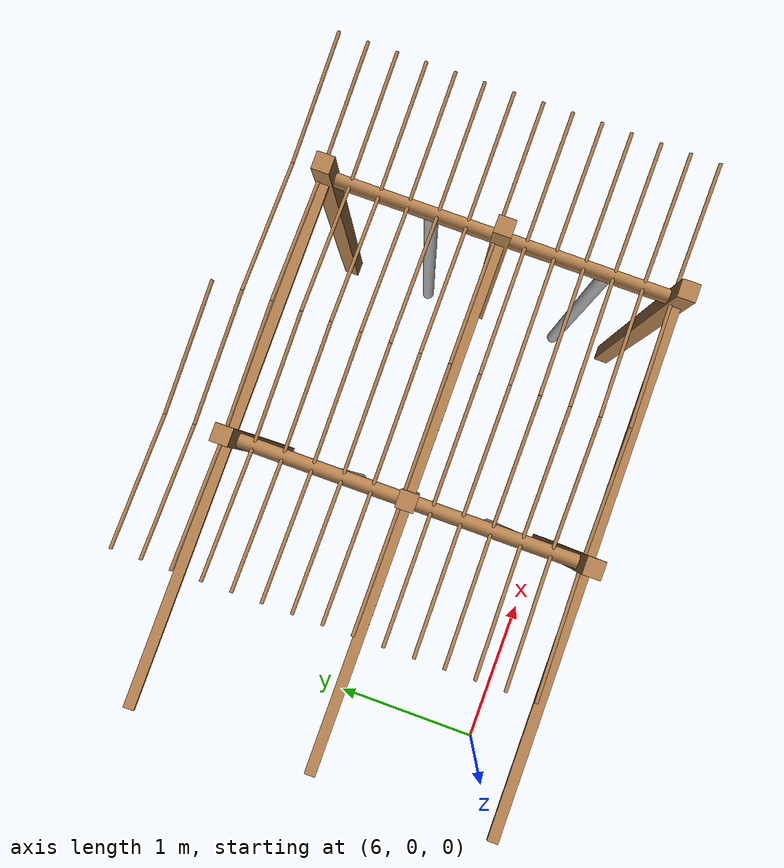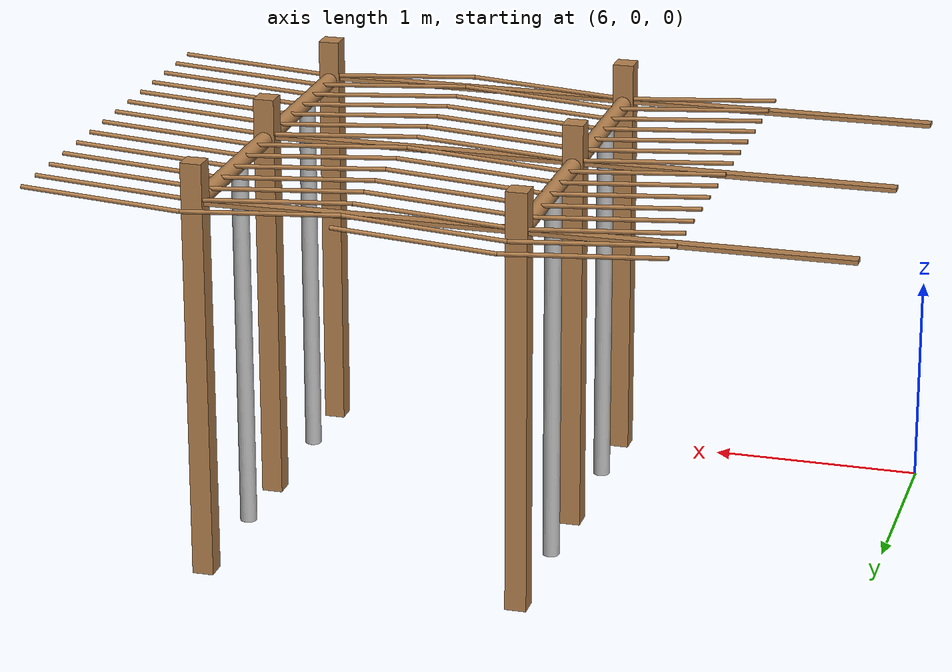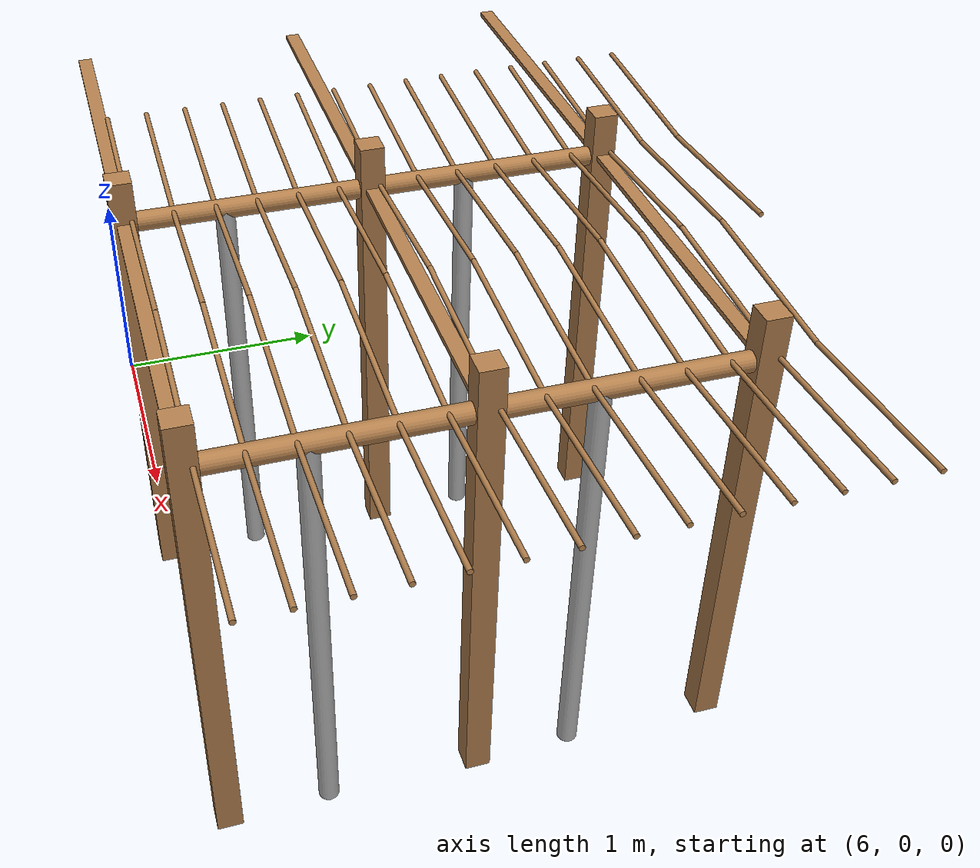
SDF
<sdf version="1.4">
 <model name="pergola">
  <include><name>post_55</name><pose>7.5 0.0 0 0 0 0</pose><uri>model://post</uri></include>
  <include><name>post_56</name><pose>7.5 1.0 0 0 0 0</pose><uri>model://post</uri></include>
  <include><name>post_57</name><pose>7.5 2.0 0 0 0 0</pose><uri>model://post</uri></include>
  <include><name>post_66</name><pose>9.0 0.0 0 0 0 0</pose><uri>model://post</uri></include>
  <include><name>post_67</name><pose>9.0 1.0 0 0 0 0</pose><uri>model://post</uri></include>
  <include><name>post_68</name><pose>9.0 2.0 0 0 0 0</pose><uri>model://post</uri></include>
  <link name="beam_44">
   <pose>6.75 0.0 1.81 0 0 0</pose>
   <collision name="collision"><geometry><box><size>1.5 0.06 0.02</size></box></geometry></collision>
   <visual name="visual">
    <geometry><box><size>1.5 0.06 0.02</size></box></geometry>
    <material><script><name>Gazebo/Wood</name></script></material>
   </visual>
   <inertial>
    <mass>5</mass>
    <inertia>
     <ixx>0.0016666666666666668</ixx>
     <ixy>0.0</ixy>
     <ixz>0.0</ixz>
     <iyy>0.9390000000000001</iyy>
     <iyz>0.0</iyz>
     <izz>0.9376666666666665</izz>
    </inertia>
   </inertial>
  </link>
  <link name="beam_45">
   <pose>6.75 1.0 1.81 0 0 0</pose>
   <collision name="collision"><geometry><box><size>1.5 0.06 0.02</size></box></geometry></collision>
   <visual name="visual">
    <geometry><box><size>1.5 0.06 0.02</size></box></geometry>
    <material><script><name>Gazebo/Wood</name></script></material>
   </visual>
   <inertial>
    <mass>5</mass>
    <inertia>
     <ixx>0.0016666666666666668</ixx>
     <ixy>0.0</ixy>
     <ixz>0.0</ixz>
     <iyy>0.9390000000000001</iyy>
     <iyz>0.0</iyz>
     <izz>0.9376666666666665</izz>
    </inertia>
   </inertial>
  </link>
  <link name="beam_46">
   <pose>6.75 2.0 1.81 0 0 0</pose>
   <collision name="collision"><geometry><box><size>1.5 0.06 0.02</size></box></geometry></collision>
   <visual name="visual">
    <geometry><box><size>1.5 0.06 0.02</size></box></geometry>
    <material><script><name>Gazebo/Wood</name></script></material>
   </visual>
   <inertial>
    <mass>5</mass>
    <inertia>
     <ixx>0.0016666666666666668</ixx>
     <ixy>0.0</ixy>
     <ixz>0.0</ixz>
     <iyy>0.9390000000000001</iyy>
     <iyz>0.0</iyz>
     <izz>0.9376666666666665</izz>
    </inertia>
   </inertial>
  </link>
  <link name="beam_55">
   <pose>8.25 0.0 1.81 0 0 0</pose>
   <collision name="collision"><geometry><box><size>1.5 0.06 0.02</size></box></geometry></collision>
   <visual name="visual">
    <geometry><box><size>1.5 0.06 0.02</size></box></geometry>
    <material><script><name>Gazebo/Wood</name></script></material>
   </visual>
   <inertial>
    <mass>5</mass>
    <inertia>
     <ixx>0.0016666666666666668</ixx>
     <ixy>0.0</ixy>
     <ixz>0.0</ixz>
     <iyy>0.9390000000000001</iyy>
     <iyz>0.0</iyz>
     <izz>0.9376666666666665</izz>
    </inertia>
   </inertial>
  </link>
  <link name="beam_56">
   <pose>8.25 1.0 1.81 0 0 0</pose>
   <collision name="collision"><geometry><box><size>1.5 0.06 0.02</size></box></geometry></collision>
   <visual name="visual">
    <geometry><box><size>1.5 0.06 0.02</size></box></geometry>
    <material><script><name>Gazebo/Wood</name></script></material>
   </visual>
   <inertial>
    <mass>5</mass>
    <inertia>
     <ixx>0.0016666666666666668</ixx>
     <ixy>0.0</ixy>
     <ixz>0.0</ixz>
     <iyy>0.9390000000000001</iyy>
     <iyz>0.0</iyz>
     <izz>0.9376666666666665</izz>
    </inertia>
   </inertial>
  </link>
  <link name="beam_57">
   <pose>8.25 2.0 1.81 0 0 0</pose>
   <collision name="collision"><geometry><box><size>1.5 0.06 0.02</size></box></geometry></collision>
   <visual name="visual">
    <geometry><box><size>1.5 0.06 0.02</size></box></geometry>
    <material><script><name>Gazebo/Wood</name></script></material>
   </visual>
   <inertial>
    <mass>5</mass>
    <inertia>
     <ixx>0.0016666666666666668</ixx>
     <ixy>0.0</ixy>
     <ixz>0.0</ixz>
     <iyy>0.9390000000000001</iyy>
     <iyz>0.0</iyz>
     <izz>0.9376666666666665</izz>
    </inertia>
   </inertial>
  </link>
  <include><name>tree_50</name><pose>7.5 0.4 0 0 0 0</pose><uri>model://tree_trunk</uri></include>
  <include><name>tree_51</name><pose>7.5 1.4 0 0 0 0</pose><uri>model://tree_trunk</uri></include>
  <include><name>tree_60</name><pose>9.0 0.4 0 0 0 0</pose><uri>model://tree_trunk</uri></include>
  <include><name>tree_61</name><pose>9.0 1.4 0 0 0 0</pose><uri>model://tree_trunk</uri></include>
  <link name="baseBranch_50">
   <pose>7.5 0.5 1.8 1.5707963267948966 0 0</pose>
   <collision name="collision">
    <geometry><cylinder><radius>0.04</radius><length>0.94</length></cylinder></geometry>
   </collision>
   <visual name="visual">
    <geometry><cylinder><radius>0.04</radius><length>0.94</length></cylinder></geometry>
    <material><script><name>Gazebo/WoodFloor</name></script></material>
   </visual>
   <inertial>
    <mass>10</mass>
    <inertia>
     <ixx>0.7403333333333334</ixx>
     <ixy>0.0</ixy>
     <ixz>0.0</ixz>
     <iyy>0.7403333333333334</iyy>
     <iyz>0.0</iyz>
     <izz>0.008</izz>
    </inertia>
   </inertial>
  </link>
  <link name="baseBranch_51">
   <pose>7.5 1.5 1.8 1.5707963267948966 0 0</pose>
   <collision name="collision">
    <geometry><cylinder><radius>0.04</radius><length>0.94</length></cylinder></geometry>
   </collision>
   <visual name="visual">
    <geometry><cylinder><radius>0.04</radius><length>0.94</length></cylinder></geometry>
    <material><script><name>Gazebo/WoodFloor</name></script></material>
   </visual>
   <inertial>
    <mass>10</mass>
    <inertia>
     <ixx>0.7403333333333334</ixx>
     <ixy>0.0</ixy>
     <ixz>0.0</ixz>
     <iyy>0.7403333333333334</iyy>
     <iyz>0.0</iyz>
     <izz>0.008</izz>
    </inertia>
   </inertial>
  </link>
  <link name="baseBranch_60">
   <pose>9.0 0.5 1.8 1.5707963267948966 0 0</pose>
   <collision name="collision">
    <geometry><cylinder><radius>0.04</radius><length>0.94</length></cylinder></geometry>
   </collision>
   <visual name="visual">
    <geometry><cylinder><radius>0.04</radius><length>0.94</length></cylinder></geometry>
    <material><script><name>Gazebo/WoodFloor</name></script></material>
   </visual>
   <inertial>
    <mass>10</mass>
    <inertia>
     <ixx>0.7403333333333334</ixx>
     <ixy>0.0</ixy>
     <ixz>0.0</ixz>
     <iyy>0.7403333333333334</iyy>
     <iyz>0.0</iyz>
     <izz>0.008</izz>
    </inertia>
   </inertial>
  </link>
  <link name="baseBranch_61">
   <pose>9.0 1.5 1.8 1.5707963267948966 0 0</pose>
   <collision name="collision">
    <geometry><cylinder><radius>0.04</radius><length>0.94</length></cylinder></geometry>
   </collision>
   <visual name="visual">
    <geometry><cylinder><radius>0.04</radius><length>0.94</length></cylinder></geometry>
    <material><script><name>Gazebo/WoodFloor</name></script></material>
   </visual>
   <inertial>
    <mass>10</mass>
    <inertia>
     <ixx>0.7403333333333334</ixx>
     <ixy>0.0</ixy>
     <ixz>0.0</ixz>
     <iyy>0.7403333333333334</iyy>
     <iyz>0.0</iyz>
     <izz>0.008</izz>
    </inertia>
   </inertial>
  </link>
  <link name="vine_481">
   <pose>7.125 0.03 1.85 0 -1.5042281630190728 0</pose>
   <collision name="collision">
    <geometry><cylinder><radius>0.01</radius><length>0.7516648189186453</length></cylinder></geometry>
   </collision>
   <visual name="visual">
    <geometry><cylinder><radius>0.01</radius><length>0.7516648189186453</length></cylinder></geometry>
    <material><script><name>Gazebo/WoodFloor</name></script></material>
   </visual>
   <inertial>
    <mass>5</mass>
    <inertia>
     <ixx>0.23554166666666657</ixx>
     <ixy>0.0</ixy>
     <ixz>0.0</ixz>
     <iyy>0.23554166666666657</iyy>
     <iyz>0.0</iyz>
     <izz>0.00025</izz>
    </inertia>
   </inertial>
  </link>
  <link name="vine_483">
   <pose>7.125 0.19666666666666666 1.85 0 -1.5042281630190728 0</pose>
   <collision name="collision">
    <geometry><cylinder><radius>0.01</radius><length>0.7516648189186453</length></cylinder></geometry>
   </collision>
   <visual name="visual">
    <geometry><cylinder><radius>0.01</radius><length>0.7516648189186453</length></cylinder></geometry>
    <material><script><name>Gazebo/WoodFloor</name></script></material>
   </visual>
   <inertial>
    <mass>5</mass>
    <inertia>
     <ixx>0.23554166666666657</ixx>
     <ixy>0.0</ixy>
     <ixz>0.0</ixz>
     <iyy>0.23554166666666657</iyy>
     <iyz>0.0</iyz>
     <izz>0.00025</izz>
    </inertia>
   </inertial>
  </link>
  <link name="vine_485">
   <pose>7.125 0.3633333333333333 1.85 0 -1.5042281630190728 0</pose>
   <collision name="collision">
    <geometry><cylinder><radius>0.01</radius><length>0.7516648189186453</length></cylinder></geometry>
   </collision>
   <visual name="visual">
    <geometry><cylinder><radius>0.01</radius><length>0.7516648189186453</length></cylinder></geometry>
    <material><script><name>Gazebo/WoodFloor</name></script></material>
   </visual>
   <inertial>
    <mass>5</mass>
    <inertia>
     <ixx>0.23554166666666657</ixx>
     <ixy>0.0</ixy>
     <ixz>0.0</ixz>
     <iyy>0.23554166666666657</iyy>
     <iyz>0.0</iyz>
     <izz>0.00025</izz>
    </inertia>
   </inertial>
  </link>
  <link name="vine_487">
   <pose>7.125 0.53 1.85 0 -1.5042281630190728 0</pose>
   <collision name="collision">
    <geometry><cylinder><radius>0.01</radius><length>0.7516648189186453</length></cylinder></geometry>
   </collision>
   <visual name="visual">
    <geometry><cylinder><radius>0.01</radius><length>0.7516648189186453</length></cylinder></geometry>
    <material><script><name>Gazebo/WoodFloor</name></script></material>
   </visual>
   <inertial>
    <mass>5</mass>
    <inertia>
     <ixx>0.23554166666666657</ixx>
     <ixy>0.0</ixy>
     <ixz>0.0</ixz>
     <iyy>0.23554166666666657</iyy>
     <iyz>0.0</iyz>
     <izz>0.00025</izz>
    </inertia>
   </inertial>
  </link>
  <link name="vine_489">
   <pose>7.125 0.6966666666666667 1.85 0 -1.5042281630190728 0</pose>
   <collision name="collision">
    <geometry><cylinder><radius>0.01</radius><length>0.7516648189186453</length></cylinder></geometry>
   </collision>
   <visual name="visual">
    <geometry><cylinder><radius>0.01</radius><length>0.7516648189186453</length></cylinder></geometry>
    <material><script><name>Gazebo/WoodFloor</name></script></material>
   </visual>
   <inertial>
    <mass>5</mass>
    <inertia>
     <ixx>0.23554166666666657</ixx>
     <ixy>0.0</ixy>
     <ixz>0.0</ixz>
     <iyy>0.23554166666666657</iyy>
     <iyz>0.0</iyz>
     <izz>0.00025</izz>
    </inertia>
   </inertial>
  </link>
  <link name="vine_491">
   <pose>7.125 0.8633333333333333 1.85 0 -1.5042281630190728 0</pose>
   <collision name="collision">
    <geometry><cylinder><radius>0.01</radius><length>0.7516648189186453</length></cylinder></geometry>
   </collision>
   <visual name="visual">
    <geometry><cylinder><radius>0.01</radius><length>0.7516648189186453</length></cylinder></geometry>
    <material><script><name>Gazebo/WoodFloor</name></script></material>
   </visual>
   <inertial>
    <mass>5</mass>
    <inertia>
     <ixx>0.23554166666666657</ixx>
     <ixy>0.0</ixy>
     <ixz>0.0</ixz>
     <iyy>0.23554166666666657</iyy>
     <iyz>0.0</iyz>
     <izz>0.00025</izz>
    </inertia>
   </inertial>
  </link>
  <link name="vine_493">
   <pose>7.125 1.03 1.85 0 -1.5042281630190728 0</pose>
   <collision name="collision">
    <geometry><cylinder><radius>0.01</radius><length>0.7516648189186453</length></cylinder></geometry>
   </collision>
   <visual name="visual">
    <geometry><cylinder><radius>0.01</radius><length>0.7516648189186453</length></cylinder></geometry>
    <material><script><name>Gazebo/WoodFloor</name></script></material>
   </visual>
   <inertial>
    <mass>5</mass>
    <inertia>
     <ixx>0.23554166666666657</ixx>
     <ixy>0.0</ixy>
     <ixz>0.0</ixz>
     <iyy>0.23554166666666657</iyy>
     <iyz>0.0</iyz>
     <izz>0.00025</izz>
    </inertia>
   </inertial>
  </link>
  <link name="vine_495">
   <pose>7.125 1.1966666666666665 1.85 0 -1.5042281630190728 0</pose>
   <collision name="collision">
    <geometry><cylinder><radius>0.01</radius><length>0.7516648189186453</length></cylinder></geometry>
   </collision>
   <visual name="visual">
    <geometry><cylinder><radius>0.01</radius><length>0.7516648189186453</length></cylinder></geometry>
    <material><script><name>Gazebo/WoodFloor</name></script></material>
   </visual>
   <inertial>
    <mass>5</mass>
    <inertia>
     <ixx>0.23554166666666657</ixx>
     <ixy>0.0</ixy>
     <ixz>0.0</ixz>
     <iyy>0.23554166666666657</iyy>
     <iyz>0.0</iyz>
     <izz>0.00025</izz>
    </inertia>
   </inertial>
  </link>
  <link name="vine_497">
   <pose>7.125 1.3633333333333333 1.85 0 -1.5042281630190728 0</pose>
   <collision name="collision">
    <geometry><cylinder><radius>0.01</radius><length>0.7516648189186453</length></cylinder></geometry>
   </collision>
   <visual name="visual">
    <geometry><cylinder><radius>0.01</radius><length>0.7516648189186453</length></cylinder></geometry>
    <material><script><name>Gazebo/WoodFloor</name></script></material>
   </visual>
   <inertial>
    <mass>5</mass>
    <inertia>
     <ixx>0.23554166666666657</ixx>
     <ixy>0.0</ixy>
     <ixz>0.0</ixz>
     <iyy>0.23554166666666657</iyy>
     <iyz>0.0</iyz>
     <izz>0.00025</izz>
    </inertia>
   </inertial>
  </link>
  <link name="vine_499">
   <pose>7.125 1.53 1.85 0 -1.5042281630190728 0</pose>
   <collision name="collision">
    <geometry><cylinder><radius>0.01</radius><length>0.7516648189186453</length></cylinder></geometry>
   </collision>
   <visual name="visual">
    <geometry><cylinder><radius>0.01</radius><length>0.7516648189186453</length></cylinder></geometry>
    <material><script><name>Gazebo/WoodFloor</name></script></material>
   </visual>
   <inertial>
    <mass>5</mass>
    <inertia>
     <ixx>0.23554166666666657</ixx>
     <ixy>0.0</ixy>
     <ixz>0.0</ixz>
     <iyy>0.23554166666666657</iyy>
     <iyz>0.0</iyz>
     <izz>0.00025</izz>
    </inertia>
   </inertial>
  </link>
  <link name="vine_501">
   <pose>7.125 1.6966666666666665 1.85 0 -1.5042281630190728 0</pose>
   <collision name="collision">
    <geometry><cylinder><radius>0.01</radius><length>0.7516648189186453</length></cylinder></geometry>
   </collision>
   <visual name="visual">
    <geometry><cylinder><radius>0.01</radius><length>0.7516648189186453</length></cylinder></geometry>
    <material><script><name>Gazebo/WoodFloor</name></script></material>
   </visual>
   <inertial>
    <mass>5</mass>
    <inertia>
     <ixx>0.23554166666666657</ixx>
     <ixy>0.0</ixy>
     <ixz>0.0</ixz>
     <iyy>0.23554166666666657</iyy>
     <iyz>0.0</iyz>
     <izz>0.00025</izz>
    </inertia>
   </inertial>
  </link>
  <link name="vine_503">
   <pose>7.125 1.8633333333333333 1.85 0 -1.5042281630190728 0</pose>
   <collision name="collision">
    <geometry><cylinder><radius>0.01</radius><length>0.7516648189186453</length></cylinder></geometry>
   </collision>
   <visual name="visual">
    <geometry><cylinder><radius>0.01</radius><length>0.7516648189186453</length></cylinder></geometry>
    <material><script><name>Gazebo/WoodFloor</name></script></material>
   </visual>
   <inertial>
    <mass>5</mass>
    <inertia>
     <ixx>0.23554166666666657</ixx>
     <ixy>0.0</ixy>
     <ixz>0.0</ixz>
     <iyy>0.23554166666666657</iyy>
     <iyz>0.0</iyz>
     <izz>0.00025</izz>
    </inertia>
   </inertial>
  </link>
  <link name="vine_505">
   <pose>7.125 2.03 1.85 0 -1.5042281630190728 0</pose>
   <collision name="collision">
    <geometry><cylinder><radius>0.01</radius><length>0.7516648189186453</length></cylinder></geometry>
   </collision>
   <visual name="visual">
    <geometry><cylinder><radius>0.01</radius><length>0.7516648189186453</length></cylinder></geometry>
    <material><script><name>Gazebo/WoodFloor</name></script></material>
   </visual>
   <inertial>
    <mass>5</mass>
    <inertia>
     <ixx>0.23554166666666657</ixx>
     <ixy>0.0</ixy>
     <ixz>0.0</ixz>
     <iyy>0.23554166666666657</iyy>
     <iyz>0.0</iyz>
     <izz>0.00025</izz>
    </inertia>
   </inertial>
  </link>
  <link name="vine_507">
   <pose>7.125 2.1966666666666663 1.85 0 -1.5042281630190728 0</pose>
   <collision name="collision">
    <geometry><cylinder><radius>0.01</radius><length>0.7516648189186453</length></cylinder></geometry>
   </collision>
   <visual name="visual">
    <geometry><cylinder><radius>0.01</radius><length>0.7516648189186453</length></cylinder></geometry>
    <material><script><name>Gazebo/WoodFloor</name></script></material>
   </visual>
   <inertial>
    <mass>5</mass>
    <inertia>
     <ixx>0.23554166666666657</ixx>
     <ixy>0.0</ixy>
     <ixz>0.0</ixz>
     <iyy>0.23554166666666657</iyy>
     <iyz>0.0</iyz>
     <izz>0.00025</izz>
    </inertia>
   </inertial>
  </link>
  <link name="vine_509">
   <pose>7.125 2.363333333333333 1.85 0 -1.5042281630190728 0</pose>
   <collision name="collision">
    <geometry><cylinder><radius>0.01</radius><length>0.7516648189186453</length></cylinder></geometry>
   </collision>
   <visual name="visual">
    <geometry><cylinder><radius>0.01</radius><length>0.7516648189186453</length></cylinder></geometry>
    <material><script><name>Gazebo/WoodFloor</name></script></material>
   </visual>
   <inertial>
    <mass>5</mass>
    <inertia>
     <ixx>0.23554166666666657</ixx>
     <ixy>0.0</ixy>
     <ixz>0.0</ixz>
     <iyy>0.23554166666666657</iyy>
     <iyz>0.0</iyz>
     <izz>0.00025</izz>
    </inertia>
   </inertial>
  </link>
  <link name="vine_600">
   <pose>7.875 0.03 1.85 0 1.5042281630190728 0</pose>
   <collision name="collision">
    <geometry><cylinder><radius>0.01</radius><length>0.7516648189186453</length></cylinder></geometry>
   </collision>
   <visual name="visual">
    <geometry><cylinder><radius>0.01</radius><length>0.7516648189186453</length></cylinder></geometry>
    <material><script><name>Gazebo/WoodFloor</name></script></material>
   </visual>
   <inertial>
    <mass>5</mass>
    <inertia>
     <ixx>0.23554166666666657</ixx>
     <ixy>0.0</ixy>
     <ixz>0.0</ixz>
     <iyy>0.23554166666666657</iyy>
     <iyz>0.0</iyz>
     <izz>0.00025</izz>
    </inertia>
   </inertial>
  </link>
  <link name="vine_601">
   <pose>8.625 0.03 1.85 0 -1.5042281630190728 0</pose>
   <collision name="collision">
    <geometry><cylinder><radius>0.01</radius><length>0.7516648189186453</length></cylinder></geometry>
   </collision>
   <visual name="visual">
    <geometry><cylinder><radius>0.01</radius><length>0.7516648189186453</length></cylinder></geometry>
    <material><script><name>Gazebo/WoodFloor</name></script></material>
   </visual>
   <inertial>
    <mass>5</mass>
    <inertia>
     <ixx>0.23554166666666657</ixx>
     <ixy>0.0</ixy>
     <ixz>0.0</ixz>
     <iyy>0.23554166666666657</iyy>
     <iyz>0.0</iyz>
     <izz>0.00025</izz>
    </inertia>
   </inertial>
  </link>
  <link name="vine_602">
   <pose>7.875 0.19666666666666666 1.85 0 1.5042281630190728 0</pose>
   <collision name="collision">
    <geometry><cylinder><radius>0.01</radius><length>0.7516648189186453</length></cylinder></geometry>
   </collision>
   <visual name="visual">
    <geometry><cylinder><radius>0.01</radius><length>0.7516648189186453</length></cylinder></geometry>
    <material><script><name>Gazebo/WoodFloor</name></script></material>
   </visual>
   <inertial>
    <mass>5</mass>
    <inertia>
     <ixx>0.23554166666666657</ixx>
     <ixy>0.0</ixy>
     <ixz>0.0</ixz>
     <iyy>0.23554166666666657</iyy>
     <iyz>0.0</iyz>
     <izz>0.00025</izz>
    </inertia>
   </inertial>
  </link>
  <link name="vine_603">
   <pose>8.625 0.19666666666666666 1.85 0 -1.5042281630190728 0</pose>
   <collision name="collision">
    <geometry><cylinder><radius>0.01</radius><length>0.7516648189186453</length></cylinder></geometry>
   </collision>
   <visual name="visual">
    <geometry><cylinder><radius>0.01</radius><length>0.7516648189186453</length></cylinder></geometry>
    <material><script><name>Gazebo/WoodFloor</name></script></material>
   </visual>
   <inertial>
    <mass>5</mass>
    <inertia>
     <ixx>0.23554166666666657</ixx>
     <ixy>0.0</ixy>
     <ixz>0.0</ixz>
     <iyy>0.23554166666666657</iyy>
     <iyz>0.0</iyz>
     <izz>0.00025</izz>
    </inertia>
   </inertial>
  </link>
  <link name="vine_604">
   <pose>7.875 0.3633333333333333 1.85 0 1.5042281630190728 0</pose>
   <collision name="collision">
    <geometry><cylinder><radius>0.01</radius><length>0.7516648189186453</length></cylinder></geometry>
   </collision>
   <visual name="visual">
    <geometry><cylinder><radius>0.01</radius><length>0.7516648189186453</length></cylinder></geometry>
    <material><script><name>Gazebo/WoodFloor</name></script></material>
   </visual>
   <inertial>
    <mass>5</mass>
    <inertia>
     <ixx>0.23554166666666657</ixx>
     <ixy>0.0</ixy>
     <ixz>0.0</ixz>
     <iyy>0.23554166666666657</iyy>
     <iyz>0.0</iyz>
     <izz>0.00025</izz>
    </inertia>
   </inertial>
  </link>
  <link name="vine_605">
   <pose>8.625 0.3633333333333333 1.85 0 -1.5042281630190728 0</pose>
   <collision name="collision">
    <geometry><cylinder><radius>0.01</radius><length>0.7516648189186453</length></cylinder></geometry>
   </collision>
   <visual name="visual">
    <geometry><cylinder><radius>0.01</radius><length>0.7516648189186453</length></cylinder></geometry>
    <material><script><name>Gazebo/WoodFloor</name></script></material>
   </visual>
   <inertial>
    <mass>5</mass>
    <inertia>
     <ixx>0.23554166666666657</ixx>
     <ixy>0.0</ixy>
     <ixz>0.0</ixz>
     <iyy>0.23554166666666657</iyy>
     <iyz>0.0</iyz>
     <izz>0.00025</izz>
    </inertia>
   </inertial>
  </link>
  <link name="vine_606">
   <pose>7.875 0.53 1.85 0 1.5042281630190728 0</pose>
   <collision name="collision">
    <geometry><cylinder><radius>0.01</radius><length>0.7516648189186453</length></cylinder></geometry>
   </collision>
   <visual name="visual">
    <geometry><cylinder><radius>0.01</radius><length>0.7516648189186453</length></cylinder></geometry>
    <material><script><name>Gazebo/WoodFloor</name></script></material>
   </visual>
   <inertial>
    <mass>5</mass>
    <inertia>
     <ixx>0.23554166666666657</ixx>
     <ixy>0.0</ixy>
     <ixz>0.0</ixz>
     <iyy>0.23554166666666657</iyy>
     <iyz>0.0</iyz>
     <izz>0.00025</izz>
    </inertia>
   </inertial>
  </link>
  <link name="vine_607">
   <pose>8.625 0.53 1.85 0 -1.5042281630190728 0</pose>
   <collision name="collision">
    <geometry><cylinder><radius>0.01</radius><length>0.7516648189186453</length></cylinder></geometry>
   </collision>
   <visual name="visual">
    <geometry><cylinder><radius>0.01</radius><length>0.7516648189186453</length></cylinder></geometry>
    <material><script><name>Gazebo/WoodFloor</name></script></material>
   </visual>
   <inertial>
    <mass>5</mass>
    <inertia>
     <ixx>0.23554166666666657</ixx>
     <ixy>0.0</ixy>
     <ixz>0.0</ixz>
     <iyy>0.23554166666666657</iyy>
     <iyz>0.0</iyz>
     <izz>0.00025</izz>
    </inertia>
   </inertial>
  </link>
  <link name="vine_608">
   <pose>7.875 0.6966666666666667 1.85 0 1.5042281630190728 0</pose>
   <collision name="collision">
    <geometry><cylinder><radius>0.01</radius><length>0.7516648189186453</length></cylinder></geometry>
   </collision>
   <visual name="visual">
    <geometry><cylinder><radius>0.01</radius><length>0.7516648189186453</length></cylinder></geometry>
    <material><script><name>Gazebo/WoodFloor</name></script></material>
   </visual>
   <inertial>
    <mass>5</mass>
    <inertia>
     <ixx>0.23554166666666657</ixx>
     <ixy>0.0</ixy>
     <ixz>0.0</ixz>
     <iyy>0.23554166666666657</iyy>
     <iyz>0.0</iyz>
     <izz>0.00025</izz>
    </inertia>
   </inertial>
  </link>
  <link name="vine_609">
   <pose>8.625 0.6966666666666667 1.85 0 -1.5042281630190728 0</pose>
   <collision name="collision">
    <geometry><cylinder><radius>0.01</radius><length>0.7516648189186453</length></cylinder></geometry>
   </collision>
   <visual name="visual">
    <geometry><cylinder><radius>0.01</radius><length>0.7516648189186453</length></cylinder></geometry>
    <material><script><name>Gazebo/WoodFloor</name></script></material>
   </visual>
   <inertial>
    <mass>5</mass>
    <inertia>
     <ixx>0.23554166666666657</ixx>
     <ixy>0.0</ixy>
     <ixz>0.0</ixz>
     <iyy>0.23554166666666657</iyy>
     <iyz>0.0</iyz>
     <izz>0.00025</izz>
    </inertia>
   </inertial>
  </link>
  <link name="vine_610">
   <pose>7.875 0.8633333333333333 1.85 0 1.5042281630190728 0</pose>
   <collision name="collision">
    <geometry><cylinder><radius>0.01</radius><length>0.7516648189186453</length></cylinder></geometry>
   </collision>
   <visual name="visual">
    <geometry><cylinder><radius>0.01</radius><length>0.7516648189186453</length></cylinder></geometry>
    <material><script><name>Gazebo/WoodFloor</name></script></material>
   </visual>
   <inertial>
    <mass>5</mass>
    <inertia>
     <ixx>0.23554166666666657</ixx>
     <ixy>0.0</ixy>
     <ixz>0.0</ixz>
     <iyy>0.23554166666666657</iyy>
     <iyz>0.0</iyz>
     <izz>0.00025</izz>
    </inertia>
   </inertial>
  </link>
  <link name="vine_611">
   <pose>8.625 0.8633333333333333 1.85 0 -1.5042281630190728 0</pose>
   <collision name="collision">
    <geometry><cylinder><radius>0.01</radius><length>0.7516648189186453</length></cylinder></geometry>
   </collision>
   <visual name="visual">
    <geometry><cylinder><radius>0.01</radius><length>0.7516648189186453</length></cylinder></geometry>
    <material><script><name>Gazebo/WoodFloor</name></script></material>
   </visual>
   <inertial>
    <mass>5</mass>
    <inertia>
     <ixx>0.23554166666666657</ixx>
     <ixy>0.0</ixy>
     <ixz>0.0</ixz>
     <iyy>0.23554166666666657</iyy>
     <iyz>0.0</iyz>
     <izz>0.00025</izz>
    </inertia>
   </inertial>
  </link>
  <link name="vine_612">
   <pose>7.875 1.03 1.85 0 1.5042281630190728 0</pose>
   <collision name="collision">
    <geometry><cylinder><radius>0.01</radius><length>0.7516648189186453</length></cylinder></geometry>
   </collision>
   <visual name="visual">
    <geometry><cylinder><radius>0.01</radius><length>0.7516648189186453</length></cylinder></geometry>
    <material><script><name>Gazebo/WoodFloor</name></script></material>
   </visual>
   <inertial>
    <mass>5</mass>
    <inertia>
     <ixx>0.23554166666666657</ixx>
     <ixy>0.0</ixy>
     <ixz>0.0</ixz>
     <iyy>0.23554166666666657</iyy>
     <iyz>0.0</iyz>
     <izz>0.00025</izz>
    </inertia>
   </inertial>
  </link>
  <link name="vine_613">
   <pose>8.625 1.03 1.85 0 -1.5042281630190728 0</pose>
   <collision name="collision">
    <geometry><cylinder><radius>0.01</radius><length>0.7516648189186453</length></cylinder></geometry>
   </collision>
   <visual name="visual">
    <geometry><cylinder><radius>0.01</radius><length>0.7516648189186453</length></cylinder></geometry>
    <material><script><name>Gazebo/WoodFloor</name></script></material>
   </visual>
   <inertial>
    <mass>5</mass>
    <inertia>
     <ixx>0.23554166666666657</ixx>
     <ixy>0.0</ixy>
     <ixz>0.0</ixz>
     <iyy>0.23554166666666657</iyy>
     <iyz>0.0</iyz>
     <izz>0.00025</izz>
    </inertia>
   </inertial>
  </link>
  <link name="vine_614">
   <pose>7.875 1.1966666666666665 1.85 0 1.5042281630190728 0</pose>
   <collision name="collision">
    <geometry><cylinder><radius>0.01</radius><length>0.7516648189186453</length></cylinder></geometry>
   </collision>
   <visual name="visual">
    <geometry><cylinder><radius>0.01</radius><length>0.7516648189186453</length></cylinder></geometry>
    <material><script><name>Gazebo/WoodFloor</name></script></material>
   </visual>
   <inertial>
    <mass>5</mass>
    <inertia>
     <ixx>0.23554166666666657</ixx>
     <ixy>0.0</ixy>
     <ixz>0.0</ixz>
     <iyy>0.23554166666666657</iyy>
     <iyz>0.0</iyz>
     <izz>0.00025</izz>
    </inertia>
   </inertial>
  </link>
  <link name="vine_615">
   <pose>8.625 1.1966666666666665 1.85 0 -1.5042281630190728 0</pose>
   <collision name="collision">
    <geometry><cylinder><radius>0.01</radius><length>0.7516648189186453</length></cylinder></geometry>
   </collision>
   <visual name="visual">
    <geometry><cylinder><radius>0.01</radius><length>0.7516648189186453</length></cylinder></geometry>
    <material><script><name>Gazebo/WoodFloor</name></script></material>
   </visual>
   <inertial>
    <mass>5</mass>
    <inertia>
     <ixx>0.23554166666666657</ixx>
     <ixy>0.0</ixy>
     <ixz>0.0</ixz>
     <iyy>0.23554166666666657</iyy>
     <iyz>0.0</iyz>
     <izz>0.00025</izz>
    </inertia>
   </inertial>
  </link>
  <link name="vine_616">
   <pose>7.875 1.3633333333333333 1.85 0 1.5042281630190728 0</pose>
   <collision name="collision">
    <geometry><cylinder><radius>0.01</radius><length>0.7516648189186453</length></cylinder></geometry>
   </collision>
   <visual name="visual">
    <geometry><cylinder><radius>0.01</radius><length>0.7516648189186453</length></cylinder></geometry>
    <material><script><name>Gazebo/WoodFloor</name></script></material>
   </visual>
   <inertial>
    <mass>5</mass>
    <inertia>
     <ixx>0.23554166666666657</ixx>
     <ixy>0.0</ixy>
     <ixz>0.0</ixz>
     <iyy>0.23554166666666657</iyy>
     <iyz>0.0</iyz>
     <izz>0.00025</izz>
    </inertia>
   </inertial>
  </link>
  <link name="vine_617">
   <pose>8.625 1.3633333333333333 1.85 0 -1.5042281630190728 0</pose>
   <collision name="collision">
    <geometry><cylinder><radius>0.01</radius><length>0.7516648189186453</length></cylinder></geometry>
   </collision>
   <visual name="visual">
    <geometry><cylinder><radius>0.01</radius><length>0.7516648189186453</length></cylinder></geometry>
    <material><script><name>Gazebo/WoodFloor</name></script></material>
   </visual>
   <inertial>
    <mass>5</mass>
    <inertia>
     <ixx>0.23554166666666657</ixx>
     <ixy>0.0</ixy>
     <ixz>0.0</ixz>
     <iyy>0.23554166666666657</iyy>
     <iyz>0.0</iyz>
     <izz>0.00025</izz>
    </inertia>
   </inertial>
  </link>
  <link name="vine_618">
   <pose>7.875 1.53 1.85 0 1.5042281630190728 0</pose>
   <collision name="collision">
    <geometry><cylinder><radius>0.01</radius><length>0.7516648189186453</length></cylinder></geometry>
   </collision>
   <visual name="visual">
    <geometry><cylinder><radius>0.01</radius><length>0.7516648189186453</length></cylinder></geometry>
    <material><script><name>Gazebo/WoodFloor</name></script></material>
   </visual>
   <inertial>
    <mass>5</mass>
    <inertia>
     <ixx>0.23554166666666657</ixx>
     <ixy>0.0</ixy>
     <ixz>0.0</ixz>
     <iyy>0.23554166666666657</iyy>
     <iyz>0.0</iyz>
     <izz>0.00025</izz>
    </inertia>
   </inertial>
  </link>
  <link name="vine_619">
   <pose>8.625 1.53 1.85 0 -1.5042281630190728 0</pose>
   <collision name="collision">
    <geometry><cylinder><radius>0.01</radius><length>0.7516648189186453</length></cylinder></geometry>
   </collision>
   <visual name="visual">
    <geometry><cylinder><radius>0.01</radius><length>0.7516648189186453</length></cylinder></geometry>
    <material><script><name>Gazebo/WoodFloor</name></script></material>
   </visual>
   <inertial>
    <mass>5</mass>
    <inertia>
     <ixx>0.23554166666666657</ixx>
     <ixy>0.0</ixy>
     <ixz>0.0</ixz>
     <iyy>0.23554166666666657</iyy>
     <iyz>0.0</iyz>
     <izz>0.00025</izz>
    </inertia>
   </inertial>
  </link>
  <link name="vine_620">
   <pose>7.875 1.6966666666666665 1.85 0 1.5042281630190728 0</pose>
   <collision name="collision">
    <geometry><cylinder><radius>0.01</radius><length>0.7516648189186453</length></cylinder></geometry>
   </collision>
   <visual name="visual">
    <geometry><cylinder><radius>0.01</radius><length>0.7516648189186453</length></cylinder></geometry>
    <material><script><name>Gazebo/WoodFloor</name></script></material>
   </visual>
   <inertial>
    <mass>5</mass>
    <inertia>
     <ixx>0.23554166666666657</ixx>
     <ixy>0.0</ixy>
     <ixz>0.0</ixz>
     <iyy>0.23554166666666657</iyy>
     <iyz>0.0</iyz>
     <izz>0.00025</izz>
    </inertia>
   </inertial>
  </link>
  <link name="vine_621">
   <pose>8.625 1.6966666666666665 1.85 0 -1.5042281630190728 0</pose>
   <collision name="collision">
    <geometry><cylinder><radius>0.01</radius><length>0.7516648189186453</length></cylinder></geometry>
   </collision>
   <visual name="visual">
    <geometry><cylinder><radius>0.01</radius><length>0.7516648189186453</length></cylinder></geometry>
    <material><script><name>Gazebo/WoodFloor</name></script></material>
   </visual>
   <inertial>
    <mass>5</mass>
    <inertia>
     <ixx>0.23554166666666657</ixx>
     <ixy>0.0</ixy>
     <ixz>0.0</ixz>
     <iyy>0.23554166666666657</iyy>
     <iyz>0.0</iyz>
     <izz>0.00025</izz>
    </inertia>
   </inertial>
  </link>
  <link name="vine_622">
   <pose>7.875 1.8633333333333333 1.85 0 1.5042281630190728 0</pose>
   <collision name="collision">
    <geometry><cylinder><radius>0.01</radius><length>0.7516648189186453</length></cylinder></geometry>
   </collision>
   <visual name="visual">
    <geometry><cylinder><radius>0.01</radius><length>0.7516648189186453</length></cylinder></geometry>
    <material><script><name>Gazebo/WoodFloor</name></script></material>
   </visual>
   <inertial>
    <mass>5</mass>
    <inertia>
     <ixx>0.23554166666666657</ixx>
     <ixy>0.0</ixy>
     <ixz>0.0</ixz>
     <iyy>0.23554166666666657</iyy>
     <iyz>0.0</iyz>
     <izz>0.00025</izz>
    </inertia>
   </inertial>
  </link>
  <link name="vine_623">
   <pose>8.625 1.8633333333333333 1.85 0 -1.5042281630190728 0</pose>
   <collision name="collision">
    <geometry><cylinder><radius>0.01</radius><length>0.7516648189186453</length></cylinder></geometry>
   </collision>
   <visual name="visual">
    <geometry><cylinder><radius>0.01</radius><length>0.7516648189186453</length></cylinder></geometry>
    <material><script><name>Gazebo/WoodFloor</name></script></material>
   </visual>
   <inertial>
    <mass>5</mass>
    <inertia>
     <ixx>0.23554166666666657</ixx>
     <ixy>0.0</ixy>
     <ixz>0.0</ixz>
     <iyy>0.23554166666666657</iyy>
     <iyz>0.0</iyz>
     <izz>0.00025</izz>
    </inertia>
   </inertial>
  </link>
  <link name="vine_624">
   <pose>7.875 2.03 1.85 0 1.5042281630190728 0</pose>
   <collision name="collision">
    <geometry><cylinder><radius>0.01</radius><length>0.7516648189186453</length></cylinder></geometry>
   </collision>
   <visual name="visual">
    <geometry><cylinder><radius>0.01</radius><length>0.7516648189186453</length></cylinder></geometry>
    <material><script><name>Gazebo/WoodFloor</name></script></material>
   </visual>
   <inertial>
    <mass>5</mass>
    <inertia>
     <ixx>0.23554166666666657</ixx>
     <ixy>0.0</ixy>
     <ixz>0.0</ixz>
     <iyy>0.23554166666666657</iyy>
     <iyz>0.0</iyz>
     <izz>0.00025</izz>
    </inertia>
   </inertial>
  </link>
  <link name="vine_625">
   <pose>8.625 2.03 1.85 0 -1.5042281630190728 0</pose>
   <collision name="collision">
    <geometry><cylinder><radius>0.01</radius><length>0.7516648189186453</length></cylinder></geometry>
   </collision>
   <visual name="visual">
    <geometry><cylinder><radius>0.01</radius><length>0.7516648189186453</length></cylinder></geometry>
    <material><script><name>Gazebo/WoodFloor</name></script></material>
   </visual>
   <inertial>
    <mass>5</mass>
    <inertia>
     <ixx>0.23554166666666657</ixx>
     <ixy>0.0</ixy>
     <ixz>0.0</ixz>
     <iyy>0.23554166666666657</iyy>
     <iyz>0.0</iyz>
     <izz>0.00025</izz>
    </inertia>
   </inertial>
  </link>
  <link name="vine_626">
   <pose>7.875 2.1966666666666663 1.85 0 1.5042281630190728 0</pose>
   <collision name="collision">
    <geometry><cylinder><radius>0.01</radius><length>0.7516648189186453</length></cylinder></geometry>
   </collision>
   <visual name="visual">
    <geometry><cylinder><radius>0.01</radius><length>0.7516648189186453</length></cylinder></geometry>
    <material><script><name>Gazebo/WoodFloor</name></script></material>
   </visual>
   <inertial>
    <mass>5</mass>
    <inertia>
     <ixx>0.23554166666666657</ixx>
     <ixy>0.0</ixy>
     <ixz>0.0</ixz>
     <iyy>0.23554166666666657</iyy>
     <iyz>0.0</iyz>
     <izz>0.00025</izz>
    </inertia>
   </inertial>
  </link>
  <link name="vine_627">
   <pose>8.625 2.1966666666666663 1.85 0 -1.5042281630190728 0</pose>
   <collision name="collision">
    <geometry><cylinder><radius>0.01</radius><length>0.7516648189186453</length></cylinder></geometry>
   </collision>
   <visual name="visual">
    <geometry><cylinder><radius>0.01</radius><length>0.7516648189186453</length></cylinder></geometry>
    <material><script><name>Gazebo/WoodFloor</name></script></material>
   </visual>
   <inertial>
    <mass>5</mass>
    <inertia>
     <ixx>0.23554166666666657</ixx>
     <ixy>0.0</ixy>
     <ixz>0.0</ixz>
     <iyy>0.23554166666666657</iyy>
     <iyz>0.0</iyz>
     <izz>0.00025</izz>
    </inertia>
   </inertial>
  </link>
  <link name="vine_628">
   <pose>7.875 2.363333333333333 1.85 0 1.5042281630190728 0</pose>
   <collision name="collision">
    <geometry><cylinder><radius>0.01</radius><length>0.7516648189186453</length></cylinder></geometry>
   </collision>
   <visual name="visual">
    <geometry><cylinder><radius>0.01</radius><length>0.7516648189186453</length></cylinder></geometry>
    <material><script><name>Gazebo/WoodFloor</name></script></material>
   </visual>
   <inertial>
    <mass>5</mass>
    <inertia>
     <ixx>0.23554166666666657</ixx>
     <ixy>0.0</ixy>
     <ixz>0.0</ixz>
     <iyy>0.23554166666666657</iyy>
     <iyz>0.0</iyz>
     <izz>0.00025</izz>
    </inertia>
   </inertial>
  </link>
  <link name="vine_720">
   <pose>9.375 0.03 1.85 0 1.5042281630190728 0</pose>
   <collision name="collision">
    <geometry><cylinder><radius>0.01</radius><length>0.7516648189186453</length></cylinder></geometry>
   </collision>
   <visual name="visual">
    <geometry><cylinder><radius>0.01</radius><length>0.7516648189186453</length></cylinder></geometry>
    <material><script><name>Gazebo/WoodFloor</name></script></material>
   </visual>
   <inertial>
    <mass>5</mass>
    <inertia>
     <ixx>0.23554166666666657</ixx>
     <ixy>0.0</ixy>
     <ixz>0.0</ixz>
     <iyy>0.23554166666666657</iyy>
     <iyz>0.0</iyz>
     <izz>0.00025</izz>
    </inertia>
   </inertial>
  </link>
  <link name="vine_722">
   <pose>9.375 0.19666666666666666 1.85 0 1.5042281630190728 0</pose>
   <collision name="collision">
    <geometry><cylinder><radius>0.01</radius><length>0.7516648189186453</length></cylinder></geometry>
   </collision>
   <visual name="visual">
    <geometry><cylinder><radius>0.01</radius><length>0.7516648189186453</length></cylinder></geometry>
    <material><script><name>Gazebo/WoodFloor</name></script></material>
   </visual>
   <inertial>
    <mass>5</mass>
    <inertia>
     <ixx>0.23554166666666657</ixx>
     <ixy>0.0</ixy>
     <ixz>0.0</ixz>
     <iyy>0.23554166666666657</iyy>
     <iyz>0.0</iyz>
     <izz>0.00025</izz>
    </inertia>
   </inertial>
  </link>
  <link name="vine_724">
   <pose>9.375 0.3633333333333333 1.85 0 1.5042281630190728 0</pose>
   <collision name="collision">
    <geometry><cylinder><radius>0.01</radius><length>0.7516648189186453</length></cylinder></geometry>
   </collision>
   <visual name="visual">
    <geometry><cylinder><radius>0.01</radius><length>0.7516648189186453</length></cylinder></geometry>
    <material><script><name>Gazebo/WoodFloor</name></script></material>
   </visual>
   <inertial>
    <mass>5</mass>
    <inertia>
     <ixx>0.23554166666666657</ixx>
     <ixy>0.0</ixy>
     <ixz>0.0</ixz>
     <iyy>0.23554166666666657</iyy>
     <iyz>0.0</iyz>
     <izz>0.00025</izz>
    </inertia>
   </inertial>
  </link>
  <link name="vine_726">
   <pose>9.375 0.53 1.85 0 1.5042281630190728 0</pose>
   <collision name="collision">
    <geometry><cylinder><radius>0.01</radius><length>0.7516648189186453</length></cylinder></geometry>
   </collision>
   <visual name="visual">
    <geometry><cylinder><radius>0.01</radius><length>0.7516648189186453</length></cylinder></geometry>
    <material><script><name>Gazebo/WoodFloor</name></script></material>
   </visual>
   <inertial>
    <mass>5</mass>
    <inertia>
     <ixx>0.23554166666666657</ixx>
     <ixy>0.0</ixy>
     <ixz>0.0</ixz>
     <iyy>0.23554166666666657</iyy>
     <iyz>0.0</iyz>
     <izz>0.00025</izz>
    </inertia>
   </inertial>
  </link>
  <link name="vine_728">
   <pose>9.375 0.6966666666666667 1.85 0 1.5042281630190728 0</pose>
   <collision name="collision">
    <geometry><cylinder><radius>0.01</radius><length>0.7516648189186453</length></cylinder></geometry>
   </collision>
   <visual name="visual">
    <geometry><cylinder><radius>0.01</radius><length>0.7516648189186453</length></cylinder></geometry>
    <material><script><name>Gazebo/WoodFloor</name></script></material>
   </visual>
   <inertial>
    <mass>5</mass>
    <inertia>
     <ixx>0.23554166666666657</ixx>
     <ixy>0.0</ixy>
     <ixz>0.0</ixz>
     <iyy>0.23554166666666657</iyy>
     <iyz>0.0</iyz>
     <izz>0.00025</izz>
    </inertia>
   </inertial>
  </link>
  <link name="vine_730">
   <pose>9.375 0.8633333333333333 1.85 0 1.5042281630190728 0</pose>
   <collision name="collision">
    <geometry><cylinder><radius>0.01</radius><length>0.7516648189186453</length></cylinder></geometry>
   </collision>
   <visual name="visual">
    <geometry><cylinder><radius>0.01</radius><length>0.7516648189186453</length></cylinder></geometry>
    <material><script><name>Gazebo/WoodFloor</name></script></material>
   </visual>
   <inertial>
    <mass>5</mass>
    <inertia>
     <ixx>0.23554166666666657</ixx>
     <ixy>0.0</ixy>
     <ixz>0.0</ixz>
     <iyy>0.23554166666666657</iyy>
     <iyz>0.0</iyz>
     <izz>0.00025</izz>
    </inertia>
   </inertial>
  </link>
  <link name="vine_732">
   <pose>9.375 1.03 1.85 0 1.5042281630190728 0</pose>
   <collision name="collision">
    <geometry><cylinder><radius>0.01</radius><length>0.7516648189186453</length></cylinder></geometry>
   </collision>
   <visual name="visual">
    <geometry><cylinder><radius>0.01</radius><length>0.7516648189186453</length></cylinder></geometry>
    <material><script><name>Gazebo/WoodFloor</name></script></material>
   </visual>
   <inertial>
    <mass>5</mass>
    <inertia>
     <ixx>0.23554166666666657</ixx>
     <ixy>0.0</ixy>
     <ixz>0.0</ixz>
     <iyy>0.23554166666666657</iyy>
     <iyz>0.0</iyz>
     <izz>0.00025</izz>
    </inertia>
   </inertial>
  </link>
  <link name="vine_734">
   <pose>9.375 1.1966666666666665 1.85 0 1.5042281630190728 0</pose>
   <collision name="collision">
    <geometry><cylinder><radius>0.01</radius><length>0.7516648189186453</length></cylinder></geometry>
   </collision>
   <visual name="visual">
    <geometry><cylinder><radius>0.01</radius><length>0.7516648189186453</length></cylinder></geometry>
    <material><script><name>Gazebo/WoodFloor</name></script></material>
   </visual>
   <inertial>
    <mass>5</mass>
    <inertia>
     <ixx>0.23554166666666657</ixx>
     <ixy>0.0</ixy>
     <ixz>0.0</ixz>
     <iyy>0.23554166666666657</iyy>
     <iyz>0.0</iyz>
     <izz>0.00025</izz>
    </inertia>
   </inertial>
  </link>
  <link name="vine_736">
   <pose>9.375 1.3633333333333333 1.85 0 1.5042281630190728 0</pose>
   <collision name="collision">
    <geometry><cylinder><radius>0.01</radius><length>0.7516648189186453</length></cylinder></geometry>
   </collision>
   <visual name="visual">
    <geometry><cylinder><radius>0.01</radius><length>0.7516648189186453</length></cylinder></geometry>
    <material><script><name>Gazebo/WoodFloor</name></script></material>
   </visual>
   <inertial>
    <mass>5</mass>
    <inertia>
     <ixx>0.23554166666666657</ixx>
     <ixy>0.0</ixy>
     <ixz>0.0</ixz>
     <iyy>0.23554166666666657</iyy>
     <iyz>0.0</iyz>
     <izz>0.00025</izz>
    </inertia>
   </inertial>
  </link>
  <link name="vine_738">
   <pose>9.375 1.53 1.85 0 1.5042281630190728 0</pose>
   <collision name="collision">
    <geometry><cylinder><radius>0.01</radius><length>0.7516648189186453</length></cylinder></geometry>
   </collision>
   <visual name="visual">
    <geometry><cylinder><radius>0.01</radius><length>0.7516648189186453</length></cylinder></geometry>
    <material><script><name>Gazebo/WoodFloor</name></script></material>
   </visual>
   <inertial>
    <mass>5</mass>
    <inertia>
     <ixx>0.23554166666666657</ixx>
     <ixy>0.0</ixy>
     <ixz>0.0</ixz>
     <iyy>0.23554166666666657</iyy>
     <iyz>0.0</iyz>
     <izz>0.00025</izz>
    </inertia>
   </inertial>
  </link>
  <link name="vine_740">
   <pose>9.375 1.6966666666666665 1.85 0 1.5042281630190728 0</pose>
   <collision name="collision">
    <geometry><cylinder><radius>0.01</radius><length>0.7516648189186453</length></cylinder></geometry>
   </collision>
   <visual name="visual">
    <geometry><cylinder><radius>0.01</radius><length>0.7516648189186453</length></cylinder></geometry>
    <material><script><name>Gazebo/WoodFloor</name></script></material>
   </visual>
   <inertial>
    <mass>5</mass>
    <inertia>
     <ixx>0.23554166666666657</ixx>
     <ixy>0.0</ixy>
     <ixz>0.0</ixz>
     <iyy>0.23554166666666657</iyy>
     <iyz>0.0</iyz>
     <izz>0.00025</izz>
    </inertia>
   </inertial>
  </link>
  <link name="vine_742">
   <pose>9.375 1.8633333333333333 1.85 0 1.5042281630190728 0</pose>
   <collision name="collision">
    <geometry><cylinder><radius>0.01</radius><length>0.7516648189186453</length></cylinder></geometry>
   </collision>
   <visual name="visual">
    <geometry><cylinder><radius>0.01</radius><length>0.7516648189186453</length></cylinder></geometry>
    <material><script><name>Gazebo/WoodFloor</name></script></material>
   </visual>
   <inertial>
    <mass>5</mass>
    <inertia>
     <ixx>0.23554166666666657</ixx>
     <ixy>0.0</ixy>
     <ixz>0.0</ixz>
     <iyy>0.23554166666666657</iyy>
     <iyz>0.0</iyz>
     <izz>0.00025</izz>
    </inertia>
   </inertial>
  </link>
  <link name="vine_744">
   <pose>9.375 2.03 1.85 0 1.5042281630190728 0</pose>
   <collision name="collision">
    <geometry><cylinder><radius>0.01</radius><length>0.7516648189186453</length></cylinder></geometry>
   </collision>
   <visual name="visual">
    <geometry><cylinder><radius>0.01</radius><length>0.7516648189186453</length></cylinder></geometry>
    <material><script><name>Gazebo/WoodFloor</name></script></material>
   </visual>
   <inertial>
    <mass>5</mass>
    <inertia>
     <ixx>0.23554166666666657</ixx>
     <ixy>0.0</ixy>
     <ixz>0.0</ixz>
     <iyy>0.23554166666666657</iyy>
     <iyz>0.0</iyz>
     <izz>0.00025</izz>
    </inertia>
   </inertial>
  </link>
  <link name="vine_746">
   <pose>9.375 2.1966666666666663 1.85 0 1.5042281630190728 0</pose>
   <collision name="collision">
    <geometry><cylinder><radius>0.01</radius><length>0.7516648189186453</length></cylinder></geometry>
   </collision>
   <visual name="visual">
    <geometry><cylinder><radius>0.01</radius><length>0.7516648189186453</length></cylinder></geometry>
    <material><script><name>Gazebo/WoodFloor</name></script></material>
   </visual>
   <inertial>
    <mass>5</mass>
    <inertia>
     <ixx>0.23554166666666657</ixx>
     <ixy>0.0</ixy>
     <ixz>0.0</ixz>
     <iyy>0.23554166666666657</iyy>
     <iyz>0.0</iyz>
     <izz>0.00025</izz>
    </inertia>
   </inertial>
  </link>
 </model>
</sdf>
